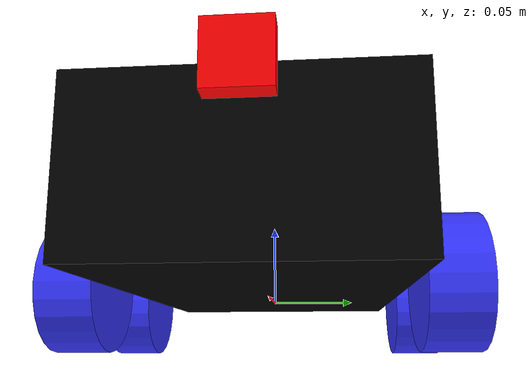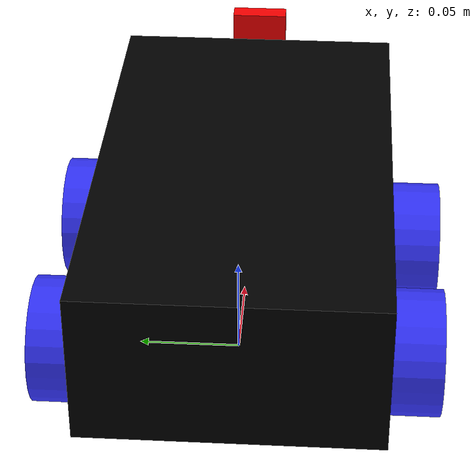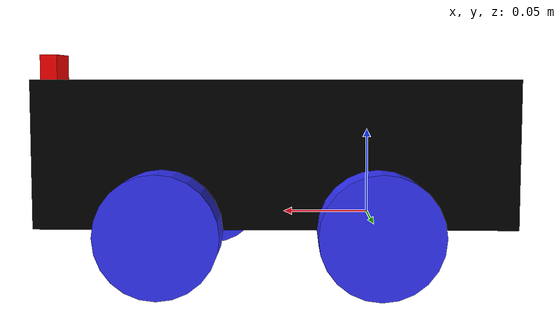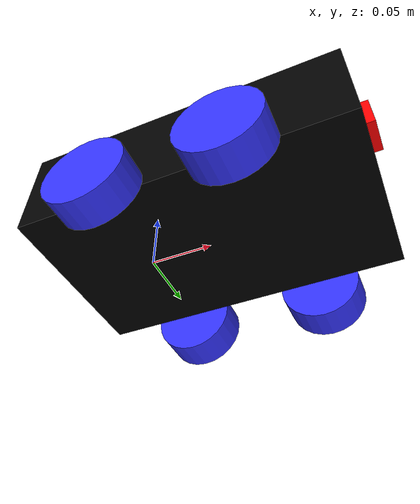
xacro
<?xml version="1.0"?>
<robot xmlns:xacro="http://www.ros.org/wiki/xacro"  name="robot">
    <xacro:arg name="sim_mode" default="false"/>
    <xacro:arg name="use_ros2_control" default="true"/>

    <xacro:include filename="robot_core.xacro" />

    <xacro:if value="$(arg use_ros2_control)">
        <xacro:include filename="ros2_control.xacro" />
    </xacro:if>
    <xacro:unless value="$(arg use_ros2_control)">
        <xacro:include filename="gazebo_control.xacro" />
    </xacro:unless>
    <xacro:include filename="lidar.xacro" />
    <xacro:include filename="camera.xacro" />

</robot>

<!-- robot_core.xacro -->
<robot xmlns:xacro="http://www.ros.org/wiki/xacro" >

    <xacro:include filename="inertial_macros.xacro"/>

    <material name="white">
        <color rgba="1 1 1 1" />
    </material>

    <material name="orange">
        <color rgba="1 0.3 0.1 1"/>
    </material>

    <material name="blue">
        <color rgba="0.2 0.2 1 1"/>
    </material>

    <material name="black">
        <color rgba="0 0 0 1"/>
    </material>

    <material name="red">
        <color rgba="1 0 0 1"/>
    </material>
    <!-- BASE LINK -->

    <link name="base_link">

    </link>

   <!-- BASE_FOOTPRINT LINK -->

    <joint name="base_footprint_joint" type="fixed">
        <parent link="base_link"/>
        <child link="base_footprint"/>
        <origin xyz="0 0 0" rpy="0 0 0"/>
    </joint>

    <link name="base_footprint">

    </link>

    <!-- CHASSIS LINK -->

     <joint name="chassis_joint" type="fixed">
        <parent link="base_link"/>
        <child link="chassis"/>
        <origin xyz="-0.075 0 0"/>
    </joint>

    <link name="chassis">
        <visual>
            <origin xyz="0.13 0 0.04"/>
            <geometry>
                <box size="0.26 0.15 0.08"/>
            </geometry>
            <material name="black"/>
        </visual>
        <collision>
            <origin xyz="0.13 0 0.04"/>
            <geometry>
                <box size="0.26 0.15 0.08"/>
            </geometry>
        </collision>
        <xacro:inertial_box mass="0.5" x="0.26" y="0.15" z="0.08">
            <origin xyz="0.13 0 0.04" rpy="0 0 0"/>
        </xacro:inertial_box>
    </link>
    <!-- les moments d'inertie -->
    <gazebo reference="chassis">
        <material>Gazebo/balck</material>
    </gazebo>

    <!-- LEFT WHEEL LINK BACK-->
    <joint name="left_wheel_joint" type="continuous">
        <parent link="base_link"/>
        <child link="left_wheel_back"/>
        <origin xyz="0 0.090 0" rpy="-${pi/2} 0 0" />
        <axis xyz="0 0 1"/>
    </joint>

    <link name="left_wheel_back">
        <visual>
            <geometry>
                <cylinder radius="0.0325" length="0.028"/>
            </geometry>
            <material name="blue"/>
        </visual>

        <collision>
            <geometry>
                <cylinder radius="0.0325" length="0.028"/>
            </geometry>
        </collision>
        <xacro:inertial_cylinder mass="0.1" length="0.028" radius="0.0325">
            <origin xyz="0 0 0" rpy="0 0 0"/>
        </xacro:inertial_cylinder>

    </link>
    <gazebo reference="left_wheel_back">
        <material>Gazebo/Blue</material>
    </gazebo>

  <!-- LEFT WHEEL LINK front-->

    <joint name="left_wheel_joint_front" type="fixed">
        <parent link="base_link"/>
        <child link="left_wheel_front"/>
        <origin xyz="0.115 0.090 0" rpy="-${pi/2} 0 0" />
    </joint>

    <link name="left_wheel_front">
        <visual>
            <geometry>
                <cylinder radius="0.0325" length="0.028"/>
            </geometry>
            <material name="blue"/>
        </visual>
        <collision>
            <geometry>
                <cylinder radius="0.0325" length="0.028" />
            </geometry>
        </collision>
        <xacro:inertial_cylinder mass="0.1" length="0.028" radius="0.0325">
            <origin xyz="0 0 0" rpy="0 0 0"/>
        </xacro:inertial_cylinder>

    </link>
    <gazebo reference="left_wheel_front">
        <material>Gazebo/Blue</material>
        <mu1 value="1.0"/>
        <mu2 value="1.0"/>
    </gazebo>
    <!-- RIGHT WHEEL LINK -->

    <joint name="right_wheel_joint" type="continuous">
        <parent link="base_link"/>
        <child link="right_wheel"/>
        <origin xyz="0 -0.090 0" rpy="${pi/2} 0 0" />
        <axis xyz="0 0 -1"/>
    </joint>

    <link name="right_wheel">
        <visual>
            <geometry>
                <cylinder radius="0.0325" length="0.026"/>
            </geometry>
            <material name="blue"/>
        </visual>
        <collision>
            <geometry>
                <cylinder radius="0.0325" length="0.028"/>
            </geometry>
        </collision>
        <xacro:inertial_cylinder mass="0.1" length="0.028" radius="0.0325">
            <origin xyz="0 0 0" rpy="0 0 0"/>
        </xacro:inertial_cylinder>
    </link>
    <gazebo reference="right_wheel">
        <material>Gazebo/Blue</material>
    </gazebo>
        <!-- RIGHT WHEEL LINK front -->

    <joint name="right_wheel_joint_front" type="fixed">
        <parent link="base_link"/>
        <child link="right_wheel_front"/>
        <origin xyz="0.1 -0.090 0" rpy="${pi/2} 0 0" />
    </joint>

    <link name="right_wheel_front">
        <visual>
            <geometry>
                <cylinder radius="0.0325" length="0.028"/>
            </geometry>
            <material name="blue"/>
        </visual>
        <collision>
            <geometry>
                <cylinder radius="0.0325" length="0.028" />
            </geometry>
        </collision>
        <xacro:inertial_cylinder mass="0.1" length="0.028" radius="0.0325">
            <origin xyz="0 0 0" rpy="0 0 0"/>
        </xacro:inertial_cylinder>
    </link>
    <gazebo reference="right_wheel_front">
        <material>Gazebo/Blue</material>
        <mu1 value="1.0"/>
        <mu2 value="1.0"/>
    </gazebo>

    <!-- Camera Joint -->

    <!-- camera_link describes the camera at the front of the AMR robot -->
    <!-- - It has multiple visual elements, which ultimately get combined together -->
    <!-- - Even if we specify different materials, RViz will just colour them all the same as the first -->
    <!-- - Although we could also specify multiple collision geometries, instead we just use a single box that encompasses the whole camera -->
</robot>

                                <!-- NOTE -->

                        <!-- SLAM -->

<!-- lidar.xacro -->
<robot xmlns:xacro="http://www.ros.org/wiki/xacro" >

    <joint name="laser_joint" type="fixed">
        <parent link="chassis"/>
        <child link="laser_frame"/>
        <origin xyz="0.13 0 0.065" rpy="0 0 0"/>
    </joint>

    <link name="laser_frame">
        <visual>
            <geometry>
                <cylinder radius="0.03" length="0.026"/>
            </geometry>
            <material name="red"/>
        </visual>
        <collision>
            <geometry>
                <cylinder radius="0.03" length="0.026"/>
            </geometry>
        </collision>
        <xacro:inertial_cylinder mass="0.5" length="0.026" radius="0.03">
            <origin xyz="0 0 0" rpy="0 0 0"/>
        </xacro:inertial_cylinder>
    </link>

    <gazebo reference="laser_frame">
        <material>Gazebo/Red</material>

        <sensor name="laser" type="ray">
            <pose> 0 0 0 0 0 0 </pose>
            <visualize>true</visualize>
            <update_rate>10</update_rate>
            <ray>
                <scan>
                    <horizontal>
                        <samples>360</samples>
                        <min_angle>-3.14</min_angle>
                        <max_angle>3.14</max_angle>
                    </horizontal>
                </scan>
                <range>
                    <min>0.3</min>
                    <max>12</max>
                </range>
            </ray>
            <plugin name="laser_controller" filename="libgazebo_ros_ray_sensor.so">
                <ros>
                    <argument>~/out:=scan</argument>
                </ros>
                <output_type>sensor_msgs/LaserScan</output_type>
                <frame_name>laser_frame</frame_name>
            </plugin>
        </sensor>
    </gazebo>

</robot>

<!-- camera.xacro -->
<robot xmlns:xacro="http://www.ros.org/wiki/xacro" >

    <joint name="camera_joint" type="fixed">
        <parent link="chassis"/>
        <child link="camera_link"/>
        <origin xyz="0.265 0 0.08" rpy="0 0 0"/>
    </joint>

    <link name="camera_link">
        <visual>
            <geometry>
                <box size="0.010 0.03 0.03"/>
            </geometry>
            <material name="red"/>
        </visual>
    </link>

    <joint name="camera_optical_joint" type="fixed">
        <parent link="camera_link"/>
        <child link="camera_link_optical"/>
        <origin xyz="0 0 0" rpy="${-pi/2} 0 ${-pi/2}"/>
    </joint>

    <link name="camera_link_optical"></link>

    <gazebo reference="camera_link">
        <material>Gazebo/Red</material>

        <sensor type="camera" name="my_camera">
            <update_rate>20</update_rate>
            <visualize>true</visualize>
            <camera name="cam">
                <horizontal_fov>1.089</horizontal_fov>
                <image>
                    <width>640</width>
                    <height>480</height>
                    <format>R8B8G8</format>
                </image>
                <clip>
                    <near>0.02</near>
                    <far>300</far>
                </clip>
                <noise>
                    <type>gaussian</type>
                    <mean>0.0</mean>
                    <stddev>0.007</stddev>
                </noise>
            </camera>
            <plugin name="camera_controller" filename="libgazebo_ros_camera.so">
                <frame_name>camera_link_optical</frame_name>
                <min_depth>0.1</min_depth>
                <max_depth>500</max_depth>
            </plugin>
        </sensor>
    </gazebo>

</robot>
